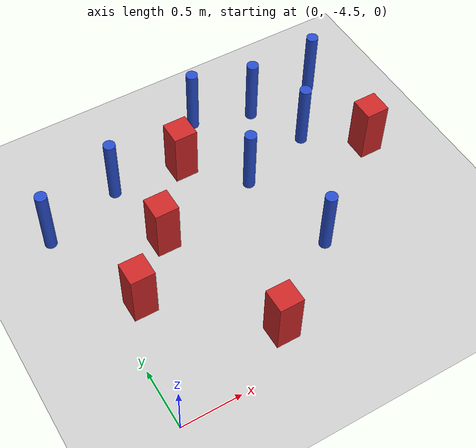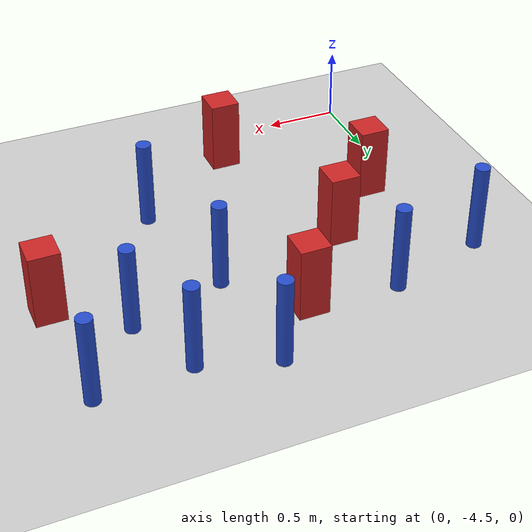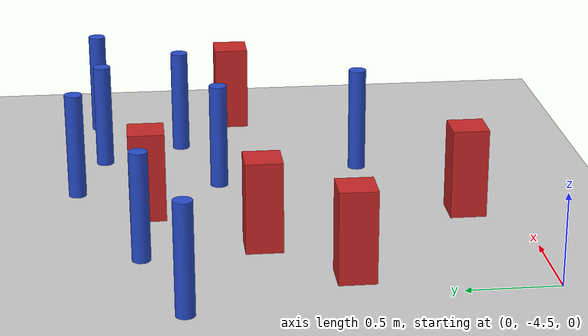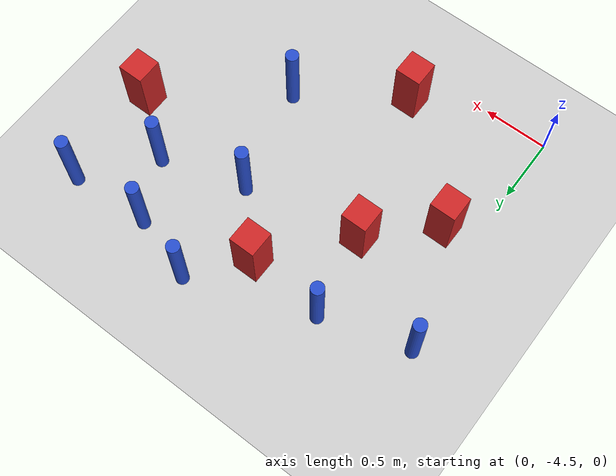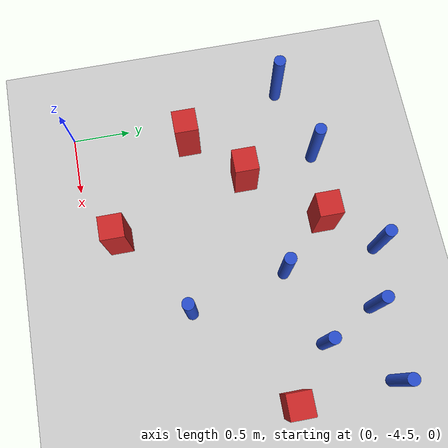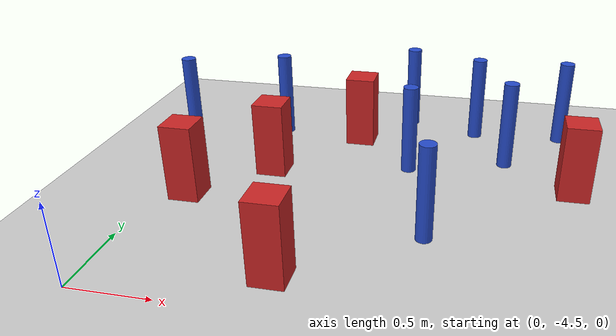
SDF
<sdf version="1.6">
 <world name="default">
  <model name="ground_plane">
   <static>1</static>
   <link name="link">
    <collision name="collision">
     <geometry><plane><normal>0 0 1</normal><size>100 100</size></plane></geometry>
     <surface><friction><ode><mu>100</mu><mu2>50</mu2></ode></friction></surface>
    </collision>
    <visual name="visual">
     <cast_shadows>0</cast_shadows>
     <geometry><plane><normal>0 0 1</normal><size>100 100</size></plane></geometry>
     <material>
      <ambient>1.0 1.0 1.0 1.0</ambient>
      <diffuse>0.8 0.8 0.8 1.0</diffuse>
      <specular>0.01 0.01 0.01 1.000000</specular>
     </material>
    </visual>
   </link>
  </model>
  <model name="square_post_obstacle30">
   <static>true</static>
   <pose>0.649804392565 -3.05325053284 8.22691968438e-08 7.2212513382e-06 -7.54495500217e-07 2.29674213826e-05</pose>
   <link name="link">
    <pose>0 0 0.25 0 -0 0</pose>
    <inertial>
     <mass>100</mass>
     <inertia>
      <ixx>0.166667</ixx>
      <ixy>0</ixy>
      <ixz>0</ixz>
      <iyy>0.166667</iyy>
      <iyz>0</iyz>
      <izz>0.166667</izz>
     </inertia>
    </inertial>
    <collision name="collision"><geometry><box><size>.2 .2 .5</size></box></geometry></collision>
    <visual name="visual">
     <geometry><box><size>.2 .2 .5</size></box></geometry>
     <material>
      <script><name>Gazebo/Red</name><uri>file://media/materials/scripts/gazebo.material</uri></script>
     </material>
    </visual>
   </link>
  </model>
  <model name="square_post_obstacle31">
   <static>true</static>
   <pose>1.01575118948 -4.20764228667 8.22691968438e-08 7.2212513382e-06 -7.54495500217e-07 2.29674213826e-05</pose>
   <link name="link">
    <pose>0 0 0.25 0 -0 0</pose>
    <inertial>
     <mass>100</mass>
     <inertia>
      <ixx>0.166667</ixx>
      <ixy>0</ixy>
      <ixz>0</ixz>
      <iyy>0.166667</iyy>
      <iyz>0</iyz>
      <izz>0.166667</izz>
     </inertia>
    </inertial>
    <collision name="collision"><geometry><box><size>.2 .2 .5</size></box></geometry></collision>
    <visual name="visual">
     <geometry><box><size>.2 .2 .5</size></box></geometry>
     <material>
      <script><name>Gazebo/Red</name><uri>file://media/materials/scripts/gazebo.material</uri></script>
     </material>
    </visual>
   </link>
  </model>
  <model name="pole_obstacle50">
   <static>true</static>
   <pose>1.74576146803 -3.70137350015 2.88873142074e-08 -9.90536689791e-09 4.6021994899e-07 -1.20965994959e-07</pose>
   <link name="link">
    <pose>0 0 0.3 0 -0 0</pose>
    <inertial>
     <mass>1</mass>
     <inertia><ixx>0.145833</ixx><ixy>0</ixy><ixz>0</ixz><iyy>0.145833</iyy><iyz>0</iyz><izz>0.125</izz></inertia>
    </inertial>
    <collision name="collision">
     <geometry><cylinder><radius>0.05</radius><length>.6</length></cylinder></geometry>
    </collision>
    <visual name="visual">
     <geometry><cylinder><radius>0.05</radius><length>.6</length></cylinder></geometry>
     <material>
      <script><name>Gazebo/Blue</name><uri>file://media/materials/scripts/gazebo.material</uri></script>
     </material>
    </visual>
   </link>
  </model>
  <model name="square_post_obstacle73">
   <static>true</static>
   <pose>1.13918228408 -2.4591533872 8.22691968438e-08 7.2212513382e-06 -7.54495500217e-07 2.29674213826e-05</pose>
   <link name="link">
    <pose>0 0 0.25 0 -0 0</pose>
    <inertial>
     <mass>100</mass>
     <inertia>
      <ixx>0.166667</ixx>
      <ixy>0</ixy>
      <ixz>0</ixz>
      <iyy>0.166667</iyy>
      <iyz>0</iyz>
      <izz>0.166667</izz>
     </inertia>
    </inertial>
    <collision name="collision"><geometry><box><size>.2 .2 .5</size></box></geometry></collision>
    <visual name="visual">
     <geometry><box><size>.2 .2 .5</size></box></geometry>
     <material>
      <script><name>Gazebo/Red</name><uri>file://media/materials/scripts/gazebo.material</uri></script>
     </material>
    </visual>
   </link>
  </model>
  <model name="square_post_obstacle74">
   <static>true</static>
   <pose>2.61325503649 -3.01660771298 8.22691968438e-08 7.2212513382e-06 -7.54495500217e-07 2.29674213826e-05</pose>
   <link name="link">
    <pose>0 0 0.25 0 -0 0</pose>
    <inertial>
     <mass>100</mass>
     <inertia>
      <ixx>0.166667</ixx>
      <ixy>0</ixy>
      <ixz>0</ixz>
      <iyy>0.166667</iyy>
      <iyz>0</iyz>
      <izz>0.166667</izz>
     </inertia>
    </inertial>
    <collision name="collision"><geometry><box><size>.2 .2 .5</size></box></geometry></collision>
    <visual name="visual">
     <geometry><box><size>.2 .2 .5</size></box></geometry>
     <material>
      <script><name>Gazebo/Red</name><uri>file://media/materials/scripts/gazebo.material</uri></script>
     </material>
    </visual>
   </link>
  </model>
  <model name="square_post_obstacle104">
   <static>true</static>
   <pose>0.220178585552 -3.48343811061 8.22691968438e-08 7.2212513382e-06 -7.54495500217e-07 2.29674213826e-05</pose>
   <link name="link">
    <pose>0 0 0.25 0 -0 0</pose>
    <inertial>
     <mass>100</mass>
     <inertia>
      <ixx>0.166667</ixx>
      <ixy>0</ixy>
      <ixz>0</ixz>
      <iyy>0.166667</iyy>
      <iyz>0</iyz>
      <izz>0.166667</izz>
     </inertia>
    </inertial>
    <collision name="collision"><geometry><box><size>.2 .2 .5</size></box></geometry></collision>
    <visual name="visual">
     <geometry><box><size>.2 .2 .5</size></box></geometry>
     <material>
      <script><name>Gazebo/Red</name><uri>file://media/materials/scripts/gazebo.material</uri></script>
     </material>
    </visual>
   </link>
  </model>
  <model name="pole_obstacle131">
   <static>true</static>
   <pose>-0.125266160278 -2.61064426893 2.88873142074e-08 -9.9053669244e-09 4.60219948928e-07 -1.20965994988e-07</pose>
   <link name="link">
    <pose>0 0 0.3 0 -0 0</pose>
    <inertial>
     <mass>1</mass>
     <inertia><ixx>0.145833</ixx><ixy>0</ixy><ixz>0</ixz><iyy>0.145833</iyy><iyz>0</iyz><izz>0.125</izz></inertia>
    </inertial>
    <collision name="collision">
     <geometry><cylinder><radius>0.05</radius><length>.6</length></cylinder></geometry>
    </collision>
    <visual name="visual">
     <geometry><cylinder><radius>0.05</radius><length>.6</length></cylinder></geometry>
     <material>
      <script><name>Gazebo/Blue</name><uri>file://media/materials/scripts/gazebo.material</uri></script>
     </material>
    </visual>
   </link>
  </model>
  <model name="pole_obstacle172">
   <static>true</static>
   <pose>0.541032036596 -2.41201989378 2.88873142074e-08 -9.90536689505e-09 4.60219948997e-07 -1.20965994956e-07</pose>
   <link name="link">
    <pose>0 0 0.3 0 -0 0</pose>
    <inertial>
     <mass>1</mass>
     <inertia><ixx>0.145833</ixx><ixy>0</ixy><ixz>0</ixz><iyy>0.145833</iyy><iyz>0</iyz><izz>0.125</izz></inertia>
    </inertial>
    <collision name="collision">
     <geometry><cylinder><radius>0.05</radius><length>.6</length></cylinder></geometry>
    </collision>
    <visual name="visual">
     <geometry><cylinder><radius>0.05</radius><length>.6</length></cylinder></geometry>
     <material>
      <script><name>Gazebo/Blue</name><uri>file://media/materials/scripts/gazebo.material</uri></script>
     </material>
    </visual>
   </link>
  </model>
  <model name="pole_obstacle181">
   <static>true</static>
   <pose>1.46979248773 -2.06845077472 2.88873142074e-08 -9.90536689791e-09 4.6021994899e-07 -1.20965994959e-07</pose>
   <link name="link">
    <pose>0 0 0.3 0 -0 0</pose>
    <inertial>
     <mass>1</mass>
     <inertia><ixx>0.145833</ixx><ixy>0</ixy><ixz>0</ixz><iyy>0.145833</iyy><iyz>0</iyz><izz>0.125</izz></inertia>
    </inertial>
    <collision name="collision">
     <geometry><cylinder><radius>0.05</radius><length>.6</length></cylinder></geometry>
    </collision>
    <visual name="visual">
     <geometry><cylinder><radius>0.05</radius><length>.6</length></cylinder></geometry>
     <material>
      <script><name>Gazebo/Blue</name><uri>file://media/materials/scripts/gazebo.material</uri></script>
     </material>
    </visual>
   </link>
  </model>
  <model name="pole_obstacle188">
   <static>true</static>
   <pose>1.54491452291 -2.87703741996 2.88873142074e-08 -9.90536689791e-09 4.6021994899e-07 -1.20965994959e-07</pose>
   <link name="link">
    <pose>0 0 0.3 0 -0 0</pose>
    <inertial>
     <mass>1</mass>
     <inertia><ixx>0.145833</ixx><ixy>0</ixy><ixz>0</ixz><iyy>0.145833</iyy><iyz>0</iyz><izz>0.125</izz></inertia>
    </inertial>
    <collision name="collision">
     <geometry><cylinder><radius>0.05</radius><length>.6</length></cylinder></geometry>
    </collision>
    <visual name="visual">
     <geometry><cylinder><radius>0.05</radius><length>.6</length></cylinder></geometry>
     <material>
      <script><name>Gazebo/Blue</name><uri>file://media/materials/scripts/gazebo.material</uri></script>
     </material>
    </visual>
   </link>
  </model>
  <model name="pole_obstacle194">
   <static>true</static>
   <pose>1.96352721111 -2.22338996661 2.88873142074e-08 -9.90536689941e-09 4.60219948987e-07 -1.20965994961e-07</pose>
   <link name="link">
    <pose>0 0 0.3 0 -0 0</pose>
    <inertial>
     <mass>1</mass>
     <inertia><ixx>0.145833</ixx><ixy>0</ixy><ixz>0</ixz><iyy>0.145833</iyy><iyz>0</iyz><izz>0.125</izz></inertia>
    </inertial>
    <collision name="collision">
     <geometry><cylinder><radius>0.05</radius><length>.6</length></cylinder></geometry>
    </collision>
    <visual name="visual">
     <geometry><cylinder><radius>0.05</radius><length>.6</length></cylinder></geometry>
     <material>
      <script><name>Gazebo/Blue</name><uri>file://media/materials/scripts/gazebo.material</uri></script>
     </material>
    </visual>
   </link>
  </model>
  <model name="pole_obstacle217">
   <static>true</static>
   <pose>2.57809227684 -2.19140984346 2.88873142074e-08 -9.90536690232e-09 4.6021994898e-07 -1.20965994968e-07</pose>
   <link name="link">
    <pose>0 0 0.3 0 -0 0</pose>
    <inertial>
     <mass>1</mass>
     <inertia><ixx>0.145833</ixx><ixy>0</ixy><ixz>0</ixz><iyy>0.145833</iyy><iyz>0</iyz><izz>0.125</izz></inertia>
    </inertial>
    <collision name="collision">
     <geometry><cylinder><radius>0.05</radius><length>.6</length></cylinder></geometry>
    </collision>
    <visual name="visual">
     <geometry><cylinder><radius>0.05</radius><length>.6</length></cylinder></geometry>
     <material>
      <script><name>Gazebo/Blue</name><uri>file://media/materials/scripts/gazebo.material</uri></script>
     </material>
    </visual>
   </link>
  </model>
  <model name="pole_obstacle222">
   <static>true</static>
   <pose>2.18656490795 -2.68288474152 2.88873142074e-08 -9.90536690232e-09 4.6021994898e-07 -1.20965994968e-07</pose>
   <link name="link">
    <pose>0 0 0.3 0 -0 0</pose>
    <inertial>
     <mass>1</mass>
     <inertia><ixx>0.145833</ixx><ixy>0</ixy><ixz>0</ixz><iyy>0.145833</iyy><iyz>0</iyz><izz>0.125</izz></inertia>
    </inertial>
    <collision name="collision">
     <geometry><cylinder><radius>0.05</radius><length>.6</length></cylinder></geometry>
    </collision>
    <visual name="visual">
     <geometry><cylinder><radius>0.05</radius><length>.6</length></cylinder></geometry>
     <material>
      <script><name>Gazebo/Blue</name><uri>file://media/materials/scripts/gazebo.material</uri></script>
     </material>
    </visual>
   </link>
  </model>
 </world>
</sdf>
